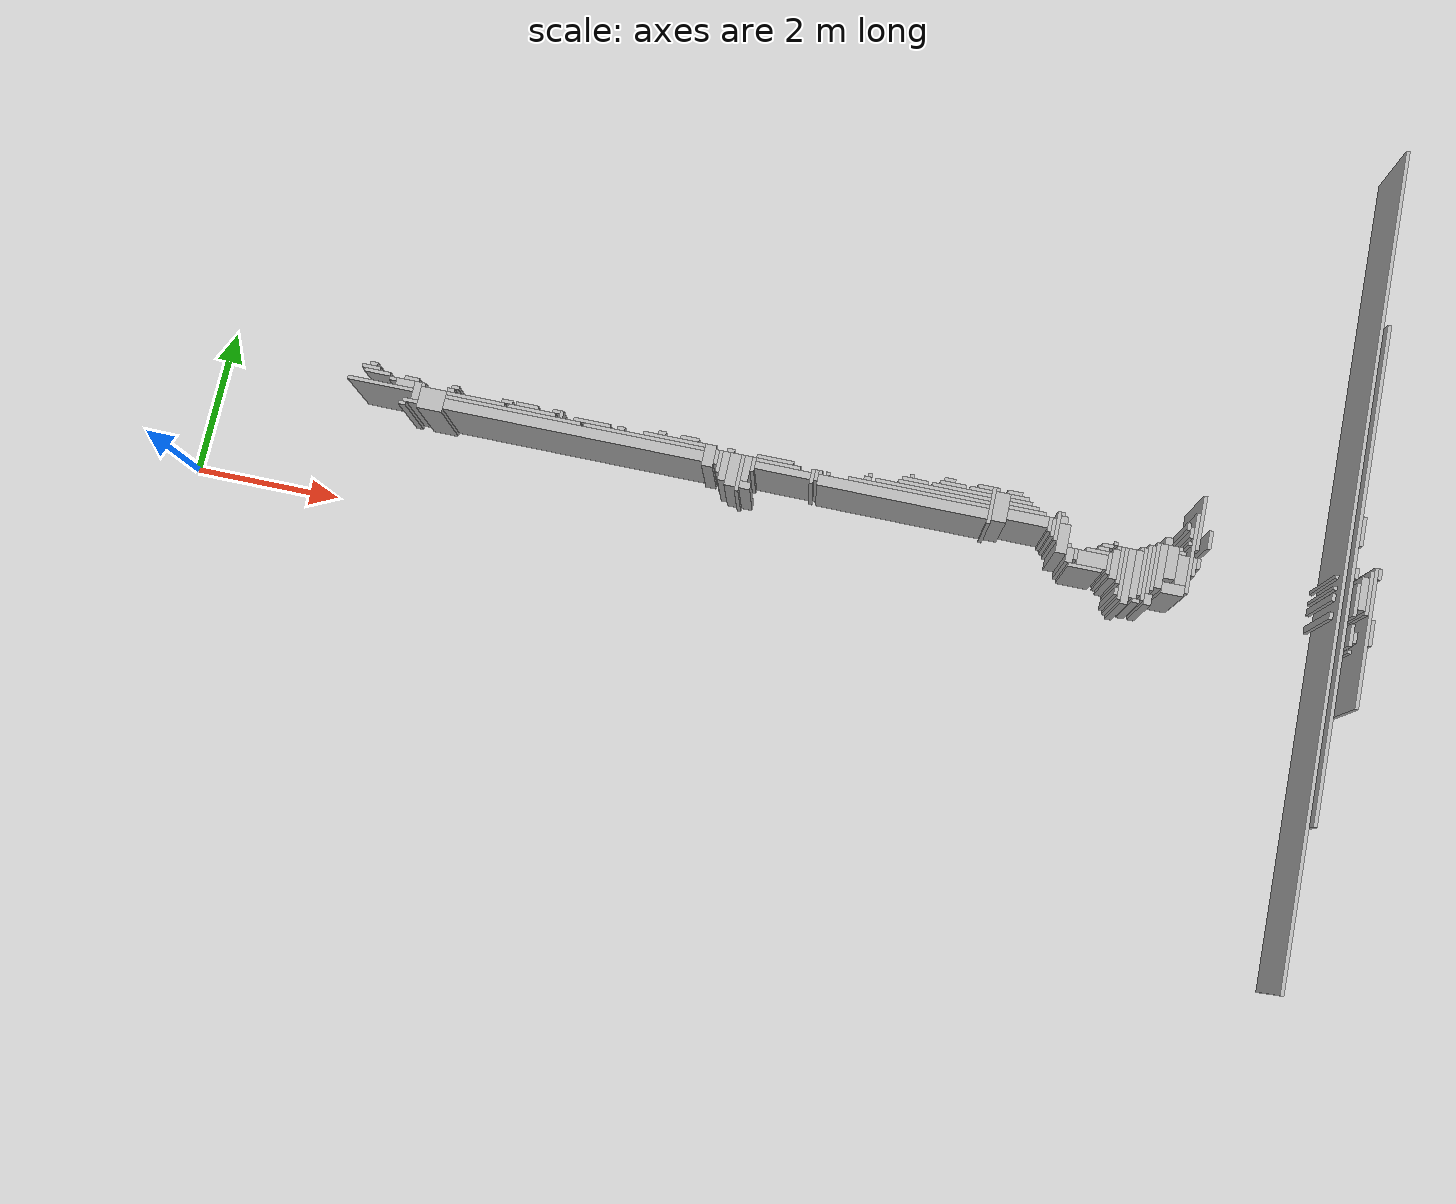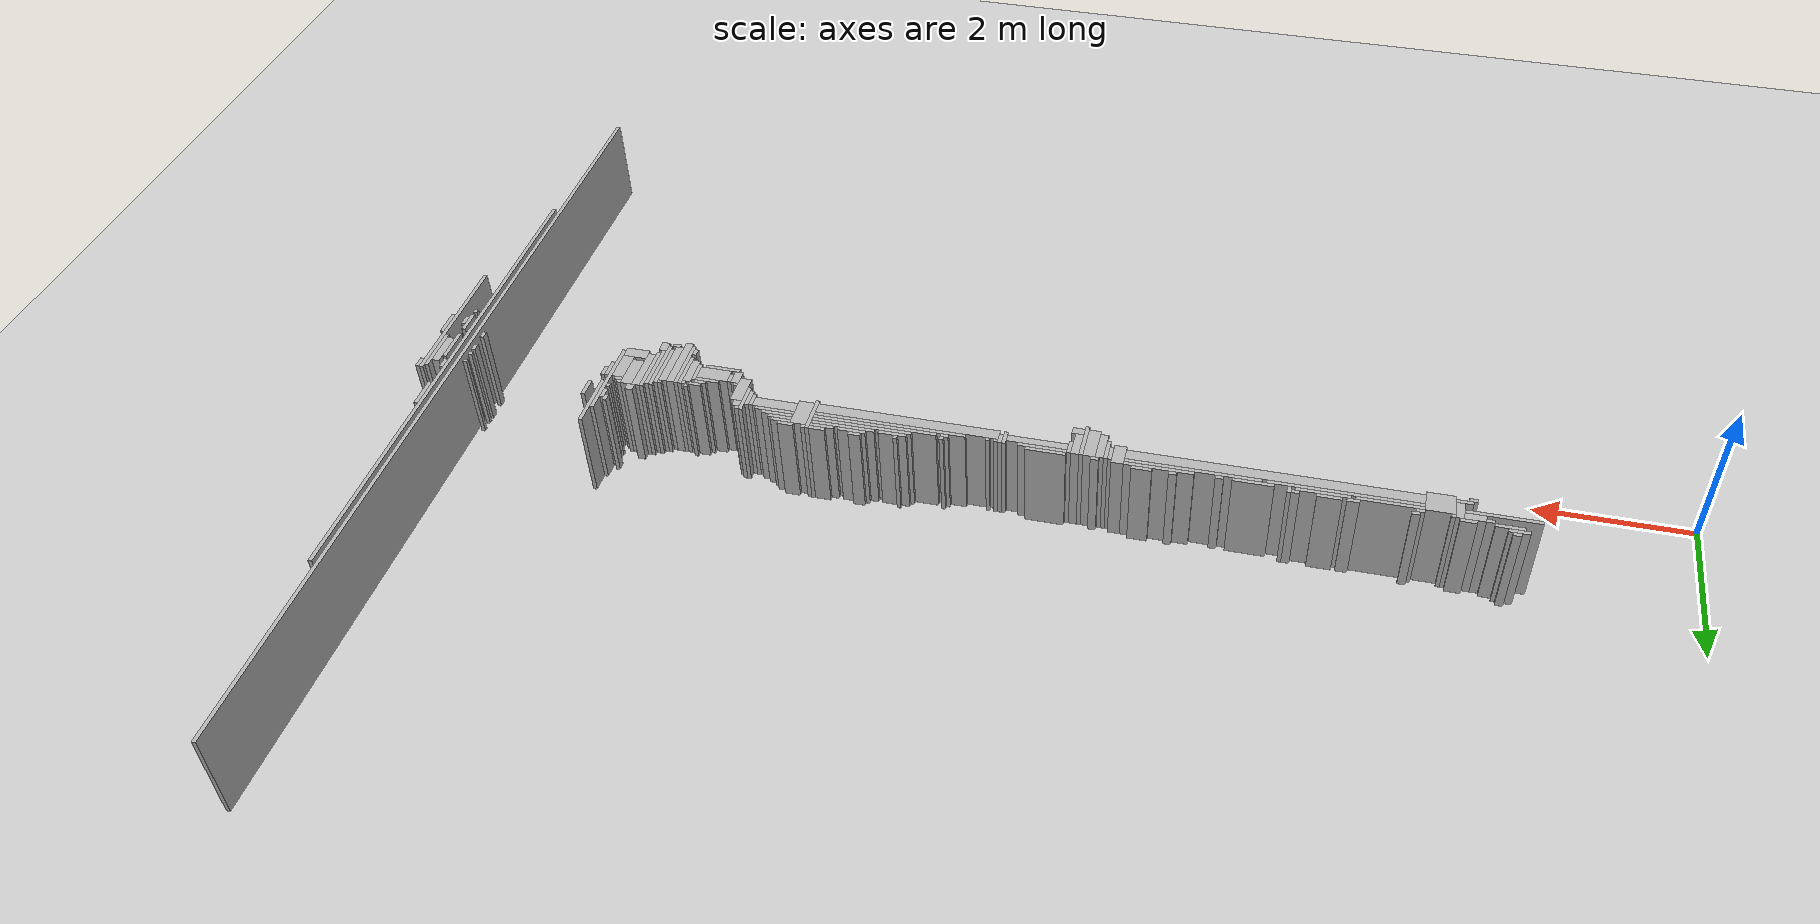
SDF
<sdf version="1.6">
 <world name="d10_floor">
  <include><uri>model://sun</uri></include>
  <include><uri>model://ground_plane</uri></include>
  <model name="d10_walls">
   <static>true</static>
   <link name="w1187">
    <pose>15.550 1.780 0.60 0 0 0</pose>
    <collision name="c"><geometry><box><size>0.050 11.550 1.20</size></box></geometry></collision>
    <visual name="v">
     <geometry><box><size>0.050 11.550 1.20</size></box></geometry>
     <material><ambient>0.6 0.6 0.6 1</ambient><diffuse>0.7 0.7 0.7 1</diffuse></material>
    </visual>
   </link>
   <link name="w1292">
    <pose>15.650 1.580 0.60 0 0 0</pose>
    <collision name="c"><geometry><box><size>0.050 6.850 1.20</size></box></geometry></collision>
    <visual name="v">
     <geometry><box><size>0.050 6.850 1.20</size></box></geometry>
     <material><ambient>0.6 0.6 0.6 1</ambient><diffuse>0.7 0.7 0.7 1</diffuse></material>
    </visual>
   </link>
   <link name="w1524">
    <pose>15.950 0.705 0.60 0 0 0</pose>
    <collision name="c"><geometry><box><size>0.050 1.900 1.20</size></box></geometry></collision>
    <visual name="v">
     <geometry><box><size>0.050 1.900 1.20</size></box></geometry>
     <material><ambient>0.6 0.6 0.6 1</ambient><diffuse>0.7 0.7 0.7 1</diffuse></material>
    </visual>
   </link>
   <link name="w1546">
    <pose>15.750 0.480 0.60 0 0 0</pose>
    <collision name="c"><geometry><box><size>0.050 0.050 1.20</size></box></geometry></collision>
    <visual name="v">
     <geometry><box><size>0.050 0.050 1.20</size></box></geometry>
     <material><ambient>0.6 0.6 0.6 1</ambient><diffuse>0.7 0.7 0.7 1</diffuse></material>
    </visual>
   </link>
   <link name="w1550">
    <pose>12.775 0.880 0.60 0 0 0</pose>
    <collision name="c"><geometry><box><size>0.100 0.750 1.20</size></box></geometry></collision>
    <visual name="v">
     <geometry><box><size>0.100 0.750 1.20</size></box></geometry>
     <material><ambient>0.6 0.6 0.6 1</ambient><diffuse>0.7 0.7 0.7 1</diffuse></material>
    </visual>
   </link>
   <link name="w1555">
    <pose>12.700 0.905 0.60 0 0 0</pose>
    <collision name="c"><geometry><box><size>0.050 0.700 1.20</size></box></geometry></collision>
    <visual name="v">
     <geometry><box><size>0.050 0.700 1.20</size></box></geometry>
     <material><ambient>0.6 0.6 0.6 1</ambient><diffuse>0.7 0.7 0.7 1</diffuse></material>
    </visual>
   </link>
   <link name="w1556">
    <pose>12.925 0.580 0.60 0 0 0</pose>
    <collision name="c"><geometry><box><size>0.100 0.050 1.20</size></box></geometry></collision>
    <visual name="v">
     <geometry><box><size>0.100 0.050 1.20</size></box></geometry>
     <material><ambient>0.6 0.6 0.6 1</ambient><diffuse>0.7 0.7 0.7 1</diffuse></material>
    </visual>
   </link>
   <link name="w1557">
    <pose>13.075 0.630 0.60 0 0 0</pose>
    <collision name="c"><geometry><box><size>0.100 0.150 1.20</size></box></geometry></collision>
    <visual name="v">
     <geometry><box><size>0.100 0.150 1.20</size></box></geometry>
     <material><ambient>0.6 0.6 0.6 1</ambient><diffuse>0.7 0.7 0.7 1</diffuse></material>
    </visual>
   </link>
   <link name="w1558">
    <pose>15.750 0.705 0.60 0 0 0</pose>
    <collision name="c"><geometry><box><size>0.050 0.300 1.20</size></box></geometry></collision>
    <visual name="v">
     <geometry><box><size>0.050 0.300 1.20</size></box></geometry>
     <material><ambient>0.6 0.6 0.6 1</ambient><diffuse>0.7 0.7 0.7 1</diffuse></material>
    </visual>
   </link>
   <link name="w1563">
    <pose>12.650 0.655 0.60 0 0 0</pose>
    <collision name="c"><geometry><box><size>0.050 0.100 1.20</size></box></geometry></collision>
    <visual name="v">
     <geometry><box><size>0.050 0.100 1.20</size></box></geometry>
     <material><ambient>0.6 0.6 0.6 1</ambient><diffuse>0.7 0.7 0.7 1</diffuse></material>
    </visual>
   </link>
   <link name="w1564">
    <pose>12.875 0.930 0.60 0 0 0</pose>
    <collision name="c"><geometry><box><size>0.100 0.650 1.20</size></box></geometry></collision>
    <visual name="v">
     <geometry><box><size>0.100 0.650 1.20</size></box></geometry>
     <material><ambient>0.6 0.6 0.6 1</ambient><diffuse>0.7 0.7 0.7 1</diffuse></material>
    </visual>
   </link>
   <link name="w1565">
    <pose>13.000 0.980 0.60 0 0 0</pose>
    <collision name="c"><geometry><box><size>0.050 0.750 1.20</size></box></geometry></collision>
    <visual name="v">
     <geometry><box><size>0.050 0.750 1.20</size></box></geometry>
     <material><ambient>0.6 0.6 0.6 1</ambient><diffuse>0.7 0.7 0.7 1</diffuse></material>
    </visual>
   </link>
   <link name="w1566">
    <pose>15.800 0.680 0.60 0 0 0</pose>
    <collision name="c"><geometry><box><size>0.050 0.150 1.20</size></box></geometry></collision>
    <visual name="v">
     <geometry><box><size>0.050 0.150 1.20</size></box></geometry>
     <material><ambient>0.6 0.6 0.6 1</ambient><diffuse>0.7 0.7 0.7 1</diffuse></material>
    </visual>
   </link>
   <link name="w1567">
    <pose>16.000 0.780 0.60 0 0 0</pose>
    <collision name="c"><geometry><box><size>0.050 0.350 1.20</size></box></geometry></collision>
    <visual name="v">
     <geometry><box><size>0.050 0.350 1.20</size></box></geometry>
     <material><ambient>0.6 0.6 0.6 1</ambient><diffuse>0.7 0.7 0.7 1</diffuse></material>
    </visual>
   </link>
   <link name="w1575">
    <pose>12.950 0.980 0.60 0 0 0</pose>
    <collision name="c"><geometry><box><size>0.050 0.650 1.20</size></box></geometry></collision>
    <visual name="v">
     <geometry><box><size>0.050 0.650 1.20</size></box></geometry>
     <material><ambient>0.6 0.6 0.6 1</ambient><diffuse>0.7 0.7 0.7 1</diffuse></material>
    </visual>
   </link>
   <link name="w1583">
    <pose>13.050 1.030 0.60 0 0 0</pose>
    <collision name="c"><geometry><box><size>0.050 0.650 1.20</size></box></geometry></collision>
    <visual name="v">
     <geometry><box><size>0.050 0.650 1.20</size></box></geometry>
     <material><ambient>0.6 0.6 0.6 1</ambient><diffuse>0.7 0.7 0.7 1</diffuse></material>
    </visual>
   </link>
   <link name="w1588">
    <pose>12.650 1.005 0.60 0 0 0</pose>
    <collision name="c"><geometry><box><size>0.050 0.500 1.20</size></box></geometry></collision>
    <visual name="v">
     <geometry><box><size>0.050 0.500 1.20</size></box></geometry>
     <material><ambient>0.6 0.6 0.6 1</ambient><diffuse>0.7 0.7 0.7 1</diffuse></material>
    </visual>
   </link>
   <link name="w1589">
    <pose>13.100 1.080 0.60 0 0 0</pose>
    <collision name="c"><geometry><box><size>0.050 0.650 1.20</size></box></geometry></collision>
    <visual name="v">
     <geometry><box><size>0.050 0.650 1.20</size></box></geometry>
     <material><ambient>0.6 0.6 0.6 1</ambient><diffuse>0.7 0.7 0.7 1</diffuse></material>
    </visual>
   </link>
   <link name="w1590">
    <pose>13.375 0.830 0.60 0 0 0</pose>
    <collision name="c"><geometry><box><size>0.300 0.150 1.20</size></box></geometry></collision>
    <visual name="v">
     <geometry><box><size>0.300 0.150 1.20</size></box></geometry>
     <material><ambient>0.6 0.6 0.6 1</ambient><diffuse>0.7 0.7 0.7 1</diffuse></material>
    </visual>
   </link>
   <link name="w1596">
    <pose>12.575 1.005 0.60 0 0 0</pose>
    <collision name="c"><geometry><box><size>0.100 0.400 1.20</size></box></geometry></collision>
    <visual name="v">
     <geometry><box><size>0.100 0.400 1.20</size></box></geometry>
     <material><ambient>0.6 0.6 0.6 1</ambient><diffuse>0.7 0.7 0.7 1</diffuse></material>
    </visual>
   </link>
   <link name="w1597">
    <pose>13.175 1.105 0.60 0 0 0</pose>
    <collision name="c"><geometry><box><size>0.100 0.600 1.20</size></box></geometry></collision>
    <visual name="v">
     <geometry><box><size>0.100 0.600 1.20</size></box></geometry>
     <material><ambient>0.6 0.6 0.6 1</ambient><diffuse>0.7 0.7 0.7 1</diffuse></material>
    </visual>
   </link>
   <link name="w1598">
    <pose>13.550 1.355 0.60 0 0 0</pose>
    <collision name="c"><geometry><box><size>0.050 1.100 1.20</size></box></geometry></collision>
    <visual name="v">
     <geometry><box><size>0.050 1.100 1.20</size></box></geometry>
     <material><ambient>0.6 0.6 0.6 1</ambient><diffuse>0.7 0.7 0.7 1</diffuse></material>
    </visual>
   </link>
   <link name="w1606">
    <pose>12.200 0.880 0.60 0 0 0</pose>
    <collision name="c"><geometry><box><size>0.450 0.050 1.20</size></box></geometry></collision>
    <visual name="v">
     <geometry><box><size>0.450 0.050 1.20</size></box></geometry>
     <material><ambient>0.6 0.6 0.6 1</ambient><diffuse>0.7 0.7 0.7 1</diffuse></material>
    </visual>
   </link>
   <link name="w1607">
    <pose>12.500 1.005 0.60 0 0 0</pose>
    <collision name="c"><geometry><box><size>0.050 0.300 1.20</size></box></geometry></collision>
    <visual name="v">
     <geometry><box><size>0.050 0.300 1.20</size></box></geometry>
     <material><ambient>0.6 0.6 0.6 1</ambient><diffuse>0.7 0.7 0.7 1</diffuse></material>
    </visual>
   </link>
   <link name="w1608">
    <pose>15.450 0.905 0.60 0 0 0</pose>
    <collision name="c"><geometry><box><size>0.050 0.100 1.20</size></box></geometry></collision>
    <visual name="v">
     <geometry><box><size>0.050 0.100 1.20</size></box></geometry>
     <material><ambient>0.6 0.6 0.6 1</ambient><diffuse>0.7 0.7 0.7 1</diffuse></material>
    </visual>
   </link>
   <link name="w1618">
    <pose>11.975 1.005 0.60 0 0 0</pose>
    <collision name="c"><geometry><box><size>0.100 0.200 1.20</size></box></geometry></collision>
    <visual name="v">
     <geometry><box><size>0.100 0.200 1.20</size></box></geometry>
     <material><ambient>0.6 0.6 0.6 1</ambient><diffuse>0.7 0.7 0.7 1</diffuse></material>
    </visual>
   </link>
   <link name="w1619">
    <pose>12.275 1.005 0.60 0 0 0</pose>
    <collision name="c"><geometry><box><size>0.400 0.200 1.20</size></box></geometry></collision>
    <visual name="v">
     <geometry><box><size>0.400 0.200 1.20</size></box></geometry>
     <material><ambient>0.6 0.6 0.6 1</ambient><diffuse>0.7 0.7 0.7 1</diffuse></material>
    </visual>
   </link>
   <link name="w1620">
    <pose>13.450 1.105 0.60 0 0 0</pose>
    <collision name="c"><geometry><box><size>0.150 0.400 1.20</size></box></geometry></collision>
    <visual name="v">
     <geometry><box><size>0.150 0.400 1.20</size></box></geometry>
     <material><ambient>0.6 0.6 0.6 1</ambient><diffuse>0.7 0.7 0.7 1</diffuse></material>
    </visual>
   </link>
   <link name="w1630">
    <pose>7.500 1.205 0.60 0 0 0</pose>
    <collision name="c"><geometry><box><size>0.050 0.500 1.20</size></box></geometry></collision>
    <visual name="v">
     <geometry><box><size>0.050 0.500 1.20</size></box></geometry>
     <material><ambient>0.6 0.6 0.6 1</ambient><diffuse>0.7 0.7 0.7 1</diffuse></material>
    </visual>
   </link>
   <link name="w1631">
    <pose>12.050 1.030 0.60 0 0 0</pose>
    <collision name="c"><geometry><box><size>0.050 0.150 1.20</size></box></geometry></collision>
    <visual name="v">
     <geometry><box><size>0.050 0.150 1.20</size></box></geometry>
     <material><ambient>0.6 0.6 0.6 1</ambient><diffuse>0.7 0.7 0.7 1</diffuse></material>
    </visual>
   </link>
   <link name="w1632">
    <pose>13.300 1.180 0.60 0 0 0</pose>
    <collision name="c"><geometry><box><size>0.150 0.450 1.20</size></box></geometry></collision>
    <visual name="v">
     <geometry><box><size>0.150 0.450 1.20</size></box></geometry>
     <material><ambient>0.6 0.6 0.6 1</ambient><diffuse>0.7 0.7 0.7 1</diffuse></material>
    </visual>
   </link>
   <link name="w1633">
    <pose>15.750 1.180 0.60 0 0 0</pose>
    <collision name="c"><geometry><box><size>0.050 0.450 1.20</size></box></geometry></collision>
    <visual name="v">
     <geometry><box><size>0.050 0.450 1.20</size></box></geometry>
     <material><ambient>0.6 0.6 0.6 1</ambient><diffuse>0.7 0.7 0.7 1</diffuse></material>
    </visual>
   </link>
   <link name="w1640">
    <pose>7.400 1.230 0.60 0 0 0</pose>
    <collision name="c"><geometry><box><size>0.150 0.450 1.20</size></box></geometry></collision>
    <visual name="v">
     <geometry><box><size>0.150 0.450 1.20</size></box></geometry>
     <material><ambient>0.6 0.6 0.6 1</ambient><diffuse>0.7 0.7 0.7 1</diffuse></material>
    </visual>
   </link>
   <link name="w1641">
    <pose>7.600 1.055 0.60 0 0 0</pose>
    <collision name="c"><geometry><box><size>0.150 0.100 1.20</size></box></geometry></collision>
    <visual name="v">
     <geometry><box><size>0.150 0.100 1.20</size></box></geometry>
     <material><ambient>0.6 0.6 0.6 1</ambient><diffuse>0.7 0.7 0.7 1</diffuse></material>
    </visual>
   </link>
   <link name="w1642">
    <pose>11.850 1.205 0.60 0 0 0</pose>
    <collision name="c"><geometry><box><size>0.150 0.400 1.20</size></box></geometry></collision>
    <visual name="v">
     <geometry><box><size>0.150 0.400 1.20</size></box></geometry>
     <material><ambient>0.6 0.6 0.6 1</ambient><diffuse>0.7 0.7 0.7 1</diffuse></material>
    </visual>
   </link>
   <link name="w1643">
    <pose>15.900 1.305 0.60 0 0 0</pose>
    <collision name="c"><geometry><box><size>0.050 0.600 1.20</size></box></geometry></collision>
    <visual name="v">
     <geometry><box><size>0.050 0.600 1.20</size></box></geometry>
     <material><ambient>0.6 0.6 0.6 1</ambient><diffuse>0.7 0.7 0.7 1</diffuse></material>
    </visual>
   </link>
   <link name="w1652">
    <pose>7.275 1.255 0.60 0 0 0</pose>
    <collision name="c"><geometry><box><size>0.100 0.400 1.20</size></box></geometry></collision>
    <visual name="v">
     <geometry><box><size>0.100 0.400 1.20</size></box></geometry>
     <material><ambient>0.6 0.6 0.6 1</ambient><diffuse>0.7 0.7 0.7 1</diffuse></material>
    </visual>
   </link>
   <link name="w1653">
    <pose>13.600 1.180 0.60 0 0 0</pose>
    <collision name="c"><geometry><box><size>0.050 0.250 1.20</size></box></geometry></collision>
    <visual name="v">
     <geometry><box><size>0.050 0.250 1.20</size></box></geometry>
     <material><ambient>0.6 0.6 0.6 1</ambient><diffuse>0.7 0.7 0.7 1</diffuse></material>
    </visual>
   </link>
   <link name="w1654">
    <pose>15.825 1.280 0.60 0 0 0</pose>
    <collision name="c"><geometry><box><size>0.100 0.450 1.20</size></box></geometry></collision>
    <visual name="v">
     <geometry><box><size>0.100 0.450 1.20</size></box></geometry>
     <material><ambient>0.6 0.6 0.6 1</ambient><diffuse>0.7 0.7 0.7 1</diffuse></material>
    </visual>
   </link>
   <link name="w1660">
    <pose>7.575 1.280 0.60 0 0 0</pose>
    <collision name="c"><geometry><box><size>0.100 0.350 1.20</size></box></geometry></collision>
    <visual name="v">
     <geometry><box><size>0.100 0.350 1.20</size></box></geometry>
     <material><ambient>0.6 0.6 0.6 1</ambient><diffuse>0.7 0.7 0.7 1</diffuse></material>
    </visual>
   </link>
   <link name="w1661">
    <pose>11.950 1.130 0.60 0 0 0</pose>
    <collision name="c"><geometry><box><size>0.050 0.050 1.20</size></box></geometry></collision>
    <visual name="v">
     <geometry><box><size>0.050 0.050 1.20</size></box></geometry>
     <material><ambient>0.6 0.6 0.6 1</ambient><diffuse>0.7 0.7 0.7 1</diffuse></material>
    </visual>
   </link>
   <link name="w1662">
    <pose>12.325 1.130 0.60 0 0 0</pose>
    <collision name="c"><geometry><box><size>0.300 0.050 1.20</size></box></geometry></collision>
    <visual name="v">
     <geometry><box><size>0.300 0.050 1.20</size></box></geometry>
     <material><ambient>0.6 0.6 0.6 1</ambient><diffuse>0.7 0.7 0.7 1</diffuse></material>
    </visual>
   </link>
   <link name="w1663">
    <pose>15.450 1.155 0.60 0 0 0</pose>
    <collision name="c"><geometry><box><size>0.050 0.100 1.20</size></box></geometry></collision>
    <visual name="v">
     <geometry><box><size>0.050 0.100 1.20</size></box></geometry>
     <material><ambient>0.6 0.6 0.6 1</ambient><diffuse>0.7 0.7 0.7 1</diffuse></material>
    </visual>
   </link>
   <link name="w1671">
    <pose>7.200 1.305 0.60 0 0 0</pose>
    <collision name="c"><geometry><box><size>0.050 0.300 1.20</size></box></geometry></collision>
    <visual name="v">
     <geometry><box><size>0.050 0.300 1.20</size></box></geometry>
     <material><ambient>0.6 0.6 0.6 1</ambient><diffuse>0.7 0.7 0.7 1</diffuse></material>
    </visual>
   </link>
   <link name="w1672">
    <pose>11.750 1.355 0.60 0 0 0</pose>
    <collision name="c"><geometry><box><size>0.050 0.400 1.20</size></box></geometry></collision>
    <visual name="v">
     <geometry><box><size>0.050 0.400 1.20</size></box></geometry>
     <material><ambient>0.6 0.6 0.6 1</ambient><diffuse>0.7 0.7 0.7 1</diffuse></material>
    </visual>
   </link>
   <link name="w1673">
    <pose>12.400 1.180 0.60 0 0 0</pose>
    <collision name="c"><geometry><box><size>0.150 0.050 1.20</size></box></geometry></collision>
    <visual name="v">
     <geometry><box><size>0.150 0.050 1.20</size></box></geometry>
     <material><ambient>0.6 0.6 0.6 1</ambient><diffuse>0.7 0.7 0.7 1</diffuse></material>
    </visual>
   </link>
   <link name="w1674">
    <pose>13.650 1.230 0.60 0 0 0</pose>
    <collision name="c"><geometry><box><size>0.050 0.150 1.20</size></box></geometry></collision>
    <visual name="v">
     <geometry><box><size>0.050 0.150 1.20</size></box></geometry>
     <material><ambient>0.6 0.6 0.6 1</ambient><diffuse>0.7 0.7 0.7 1</diffuse></material>
    </visual>
   </link>
   <link name="w1684">
    <pose>2.875 1.230 0.60 0 0 0</pose>
    <collision name="c"><geometry><box><size>0.100 0.050 1.20</size></box></geometry></collision>
    <visual name="v">
     <geometry><box><size>0.100 0.050 1.20</size></box></geometry>
     <material><ambient>0.6 0.6 0.6 1</ambient><diffuse>0.7 0.7 0.7 1</diffuse></material>
    </visual>
   </link>
   <link name="w1685">
    <pose>3.250 1.355 0.60 0 0 0</pose>
    <collision name="c"><geometry><box><size>0.350 0.300 1.20</size></box></geometry></collision>
    <visual name="v">
     <geometry><box><size>0.350 0.300 1.20</size></box></geometry>
     <material><ambient>0.6 0.6 0.6 1</ambient><diffuse>0.7 0.7 0.7 1</diffuse></material>
    </visual>
   </link>
   <link name="w1686">
    <pose>7.050 1.355 0.60 0 0 0</pose>
    <collision name="c"><geometry><box><size>0.150 0.300 1.20</size></box></geometry></collision>
    <visual name="v">
     <geometry><box><size>0.150 0.300 1.20</size></box></geometry>
     <material><ambient>0.6 0.6 0.6 1</ambient><diffuse>0.7 0.7 0.7 1</diffuse></material>
    </visual>
   </link>
   <link name="w1687">
    <pose>10.850 1.455 0.60 0 0 0</pose>
    <collision name="c"><geometry><box><size>0.050 0.500 1.20</size></box></geometry></collision>
    <visual name="v">
     <geometry><box><size>0.050 0.500 1.20</size></box></geometry>
     <material><ambient>0.6 0.6 0.6 1</ambient><diffuse>0.7 0.7 0.7 1</diffuse></material>
    </visual>
   </link>
   <link name="w1688">
    <pose>11.700 1.330 0.60 0 0 0</pose>
    <collision name="c"><geometry><box><size>0.050 0.250 1.20</size></box></geometry></collision>
    <visual name="v">
     <geometry><box><size>0.050 0.250 1.20</size></box></geometry>
     <material><ambient>0.6 0.6 0.6 1</ambient><diffuse>0.7 0.7 0.7 1</diffuse></material>
    </visual>
   </link>
   <link name="w1689">
    <pose>12.450 1.230 0.60 0 0 0</pose>
    <collision name="c"><geometry><box><size>0.150 0.050 1.20</size></box></geometry></collision>
    <visual name="v">
     <geometry><box><size>0.150 0.050 1.20</size></box></geometry>
     <material><ambient>0.6 0.6 0.6 1</ambient><diffuse>0.7 0.7 0.7 1</diffuse></material>
    </visual>
   </link>
   <link name="w1690">
    <pose>12.600 1.230 0.60 0 0 0</pose>
    <collision name="c"><geometry><box><size>0.050 0.050 1.20</size></box></geometry></collision>
    <visual name="v">
     <geometry><box><size>0.050 0.050 1.20</size></box></geometry>
     <material><ambient>0.6 0.6 0.6 1</ambient><diffuse>0.7 0.7 0.7 1</diffuse></material>
    </visual>
   </link>
   <link name="w1694">
    <pose>2.975 1.280 0.60 0 0 0</pose>
    <collision name="c"><geometry><box><size>0.200 0.050 1.20</size></box></geometry></collision>
    <visual name="v">
     <geometry><box><size>0.200 0.050 1.20</size></box></geometry>
     <material><ambient>0.6 0.6 0.6 1</ambient><diffuse>0.7 0.7 0.7 1</diffuse></material>
    </visual>
   </link>
   <link name="w1695">
    <pose>5.200 1.330 0.60 0 0 0</pose>
    <collision name="c"><geometry><box><size>3.550 0.150 1.20</size></box></geometry></collision>
    <visual name="v">
     <geometry><box><size>3.550 0.150 1.20</size></box></geometry>
     <material><ambient>0.6 0.6 0.6 1</ambient><diffuse>0.7 0.7 0.7 1</diffuse></material>
    </visual>
   </link>
   <link name="w1696">
    <pose>7.150 1.355 0.60 0 0 0</pose>
    <collision name="c"><geometry><box><size>0.050 0.200 1.20</size></box></geometry></collision>
    <visual name="v">
     <geometry><box><size>0.050 0.200 1.20</size></box></geometry>
     <material><ambient>0.6 0.6 0.6 1</ambient><diffuse>0.7 0.7 0.7 1</diffuse></material>
    </visual>
   </link>
   <link name="w1697">
    <pose>7.650 1.355 0.60 0 0 0</pose>
    <collision name="c"><geometry><box><size>0.050 0.200 1.20</size></box></geometry></collision>
    <visual name="v">
     <geometry><box><size>0.050 0.200 1.20</size></box></geometry>
     <material><ambient>0.6 0.6 0.6 1</ambient><diffuse>0.7 0.7 0.7 1</diffuse></material>
    </visual>
   </link>
   <link name="w1698">
    <pose>8.450 1.355 0.60 0 0 0</pose>
    <collision name="c"><geometry><box><size>0.050 0.200 1.20</size></box></geometry></collision>
    <visual name="v">
     <geometry><box><size>0.050 0.200 1.20</size></box></geometry>
     <material><ambient>0.6 0.6 0.6 1</ambient><diffuse>0.7 0.7 0.7 1</diffuse></material>
    </visual>
   </link>
   <link name="w1699">
    <pose>9.675 1.330 0.60 0 0 0</pose>
    <collision name="c"><geometry><box><size>2.300 0.150 1.20</size></box></geometry></collision>
    <visual name="v">
     <geometry><box><size>2.300 0.150 1.20</size></box></geometry>
     <material><ambient>0.6 0.6 0.6 1</ambient><diffuse>0.7 0.7 0.7 1</diffuse></material>
    </visual>
   </link>
   <link name="w1700">
    <pose>10.975 1.455 0.60 0 0 0</pose>
    <collision name="c"><geometry><box><size>0.200 0.400 1.20</size></box></geometry></collision>
    <visual name="v">
     <geometry><box><size>0.200 0.400 1.20</size></box></geometry>
     <material><ambient>0.6 0.6 0.6 1</ambient><diffuse>0.7 0.7 0.7 1</diffuse></material>
    </visual>
   </link>
   <link name="w1701">
    <pose>11.650 1.355 0.60 0 0 0</pose>
    <collision name="c"><geometry><box><size>0.050 0.200 1.20</size></box></geometry></collision>
    <visual name="v">
     <geometry><box><size>0.050 0.200 1.20</size></box></geometry>
     <material><ambient>0.6 0.6 0.6 1</ambient><diffuse>0.7 0.7 0.7 1</diffuse></material>
    </visual>
   </link>
   <link name="w1702">
    <pose>12.550 1.280 0.60 0 0 0</pose>
    <collision name="c"><geometry><box><size>0.050 0.050 1.20</size></box></geometry></collision>
    <visual name="v">
     <geometry><box><size>0.050 0.050 1.20</size></box></geometry>
     <material><ambient>0.6 0.6 0.6 1</ambient><diffuse>0.7 0.7 0.7 1</diffuse></material>
    </visual>
   </link>
   <link name="w1703">
    <pose>12.900 1.280 0.60 0 0 0</pose>
    <collision name="c"><geometry><box><size>0.050 0.050 1.20</size></box></geometry></collision>
    <visual name="v">
     <geometry><box><size>0.050 0.050 1.20</size></box></geometry>
     <material><ambient>0.6 0.6 0.6 1</ambient><diffuse>0.7 0.7 0.7 1</diffuse></material>
    </visual>
   </link>
   <link name="w1704">
    <pose>15.450 1.280 0.60 0 0 0</pose>
    <collision name="c"><geometry><box><size>0.050 0.050 1.20</size></box></geometry></collision>
    <visual name="v">
     <geometry><box><size>0.050 0.050 1.20</size></box></geometry>
     <material><ambient>0.6 0.6 0.6 1</ambient><diffuse>0.7 0.7 0.7 1</diffuse></material>
    </visual>
   </link>
   <link name="w1712">
    <pose>3.025 1.430 0.60 0 0 0</pose>
    <collision name="c"><geometry><box><size>0.100 0.250 1.20</size></box></geometry></collision>
    <visual name="v">
     <geometry><box><size>0.100 0.250 1.20</size></box></geometry>
     <material><ambient>0.6 0.6 0.6 1</ambient><diffuse>0.7 0.7 0.7 1</diffuse></material>
    </visual>
   </link>
   <link name="w1713">
    <pose>8.050 1.355 0.60 0 0 0</pose>
    <collision name="c"><geometry><box><size>0.750 0.100 1.20</size></box></geometry></collision>
    <visual name="v">
     <geometry><box><size>0.750 0.100 1.20</size></box></geometry>
     <material><ambient>0.6 0.6 0.6 1</ambient><diffuse>0.7 0.7 0.7 1</diffuse></material>
    </visual>
   </link>
   <link name="w1714">
    <pose>8.500 1.380 0.60 0 0 0</pose>
    <collision name="c"><geometry><box><size>0.050 0.150 1.20</size></box></geometry></collision>
    <visual name="v">
     <geometry><box><size>0.050 0.150 1.20</size></box></geometry>
     <material><ambient>0.6 0.6 0.6 1</ambient><diffuse>0.7 0.7 0.7 1</diffuse></material>
    </visual>
   </link>
   <link name="w1715">
    <pose>11.350 1.380 0.60 0 0 0</pose>
    <collision name="c"><geometry><box><size>0.550 0.150 1.20</size></box></geometry></collision>
    <visual name="v">
     <geometry><box><size>0.550 0.150 1.20</size></box></geometry>
     <material><ambient>0.6 0.6 0.6 1</ambient><diffuse>0.7 0.7 0.7 1</diffuse></material>
    </visual>
   </link>
   <link name="w1716">
    <pose>13.425 1.330 0.60 0 0 0</pose>
    <collision name="c"><geometry><box><size>0.100 0.050 1.20</size></box></geometry></collision>
    <visual name="v">
     <geometry><box><size>0.100 0.050 1.20</size></box></geometry>
     <material><ambient>0.6 0.6 0.6 1</ambient><diffuse>0.7 0.7 0.7 1</diffuse></material>
    </visual>
   </link>
   <link name="w1727">
    <pose>13.400 1.380 0.60 0 0 0</pose>
    <collision name="c"><geometry><box><size>0.050 0.050 1.20</size></box></geometry></collision>
    <visual name="v">
     <geometry><box><size>0.050 0.050 1.20</size></box></geometry>
     <material><ambient>0.6 0.6 0.6 1</ambient><diffuse>0.7 0.7 0.7 1</diffuse></material>
    </visual>
   </link>
   <link name="w1734">
    <pose>2.525 1.430 0.60 0 0 0</pose>
    <collision name="c"><geometry><box><size>0.900 0.050 1.20</size></box></geometry></collision>
    <visual name="v">
     <geometry><box><size>0.900 0.050 1.20</size></box></geometry>
     <material><ambient>0.6 0.6 0.6 1</ambient><diffuse>0.7 0.7 0.7 1</diffuse></material>
    </visual>
   </link>
   <link name="w1735">
    <pose>4.350 1.430 0.60 0 0 0</pose>
    <collision name="c"><geometry><box><size>1.850 0.050 1.20</size></box></geometry></collision>
    <visual name="v">
     <geometry><box><size>1.850 0.050 1.20</size></box></geometry>
     <material><ambient>0.6 0.6 0.6 1</ambient><diffuse>0.7 0.7 0.7 1</diffuse></material>
    </visual>
   </link>
   <link name="w1736">
    <pose>6.150 1.430 0.60 0 0 0</pose>
    <collision name="c"><geometry><box><size>1.650 0.050 1.20</size></box></geometry></collision>
    <visual name="v">
     <geometry><box><size>1.650 0.050 1.20</size></box></geometry>
     <material><ambient>0.6 0.6 0.6 1</ambient><diffuse>0.7 0.7 0.7 1</diffuse></material>
    </visual>
   </link>
   <link name="w1737">
    <pose>7.975 1.430 0.60 0 0 0</pose>
    <collision name="c"><geometry><box><size>0.600 0.050 1.20</size></box></geometry></collision>
    <visual name="v">
     <geometry><box><size>0.600 0.050 1.20</size></box></geometry>
     <material><ambient>0.6 0.6 0.6 1</ambient><diffuse>0.7 0.7 0.7 1</diffuse></material>
    </visual>
   </link>
   <link name="w1738">
    <pose>8.550 1.430 0.60 0 0 0</pose>
    <collision name="c"><geometry><box><size>0.050 0.050 1.20</size></box></geometry></collision>
    <visual name="v">
     <geometry><box><size>0.050 0.050 1.20</size></box></geometry>
     <material><ambient>0.6 0.6 0.6 1</ambient><diffuse>0.7 0.7 0.7 1</diffuse></material>
    </visual>
   </link>
   <link name="w1739">
    <pose>8.650 1.430 0.60 0 0 0</pose>
    <collision name="c"><geometry><box><size>0.050 0.050 1.20</size></box></geometry></collision>
    <visual name="v">
     <geometry><box><size>0.050 0.050 1.20</size></box></geometry>
     <material><ambient>0.6 0.6 0.6 1</ambient><diffuse>0.7 0.7 0.7 1</diffuse></material>
    </visual>
   </link>
   <link name="w1740">
    <pose>9.875 1.430 0.60 0 0 0</pose>
    <collision name="c"><geometry><box><size>1.900 0.050 1.20</size></box></geometry></collision>
    <visual name="v">
     <geometry><box><size>1.900 0.050 1.20</size></box></geometry>
     <material><ambient>0.6 0.6 0.6 1</ambient><diffuse>0.7 0.7 0.7 1</diffuse></material>
    </visual>
   </link>
   <link name="w1741">
    <pose>11.825 1.455 0.60 0 0 0</pose>
    <collision name="c"><geometry><box><size>0.100 0.100 1.20</size></box></geometry></collision>
    <visual name="v">
     <geometry><box><size>0.100 0.100 1.20</size></box></geometry>
     <material><ambient>0.6 0.6 0.6 1</ambient><diffuse>0.7 0.7 0.7 1</diffuse></material>
    </visual>
   </link>
   <link name="w1742">
    <pose>13.225 1.455 0.60 0 0 0</pose>
    <collision name="c"><geometry><box><size>0.100 0.100 1.20</size></box></geometry></collision>
    <visual name="v">
     <geometry><box><size>0.100 0.100 1.20</size></box></geometry>
     <material><ambient>0.6 0.6 0.6 1</ambient><diffuse>0.7 0.7 0.7 1</diffuse></material>
    </visual>
   </link>
   <link name="w1743">
    <pose>13.600 1.780 0.60 0 0 0</pose>
    <collision name="c"><geometry><box><size>0.050 0.750 1.20</size></box></geometry></collision>
    <visual name="v">
     <geometry><box><size>0.050 0.750 1.20</size></box></geometry>
     <material><ambient>0.6 0.6 0.6 1</ambient><diffuse>0.7 0.7 0.7 1</diffuse></material>
    </visual>
   </link>
   <link name="w1744">
    <pose>15.450 1.430 0.60 0 0 0</pose>
    <collision name="c"><geometry><box><size>0.050 0.050 1.20</size></box></geometry></collision>
    <visual name="v">
     <geometry><box><size>0.050 0.050 1.20</size></box></geometry>
     <material><ambient>0.6 0.6 0.6 1</ambient><diffuse>0.7 0.7 0.7 1</diffuse></material>
    </visual>
   </link>
   <link name="w1752">
    <pose>2.850 1.505 0.60 0 0 0</pose>
    <collision name="c"><geometry><box><size>0.250 0.100 1.20</size></box></geometry></collision>
    <visual name="v">
     <geometry><box><size>0.250 0.100 1.20</size></box></geometry>
     <material><ambient>0.6 0.6 0.6 1</ambient><diffuse>0.7 0.7 0.7 1</diffuse></material>
    </visual>
   </link>
   <link name="w1753">
    <pose>3.825 1.480 0.60 0 0 0</pose>
    <collision name="c"><geometry><box><size>0.800 0.050 1.20</size></box></geometry></collision>
    <visual name="v">
     <geometry><box><size>0.800 0.050 1.20</size></box></geometry>
     <material><ambient>0.6 0.6 0.6 1</ambient><diffuse>0.7 0.7 0.7 1</diffuse></material>
    </visual>
   </link>
   <link name="w1754">
    <pose>4.600 1.480 0.60 0 0 0</pose>
    <collision name="c"><geometry><box><size>0.650 0.050 1.20</size></box></geometry></collision>
    <visual name="v">
     <geometry><box><size>0.650 0.050 1.20</size></box></geometry>
     <material><ambient>0.6 0.6 0.6 1</ambient><diffuse>0.7 0.7 0.7 1</diffuse></material>
    </visual>
   </link>
   <link name="w1755">
    <pose>5.000 1.505 0.60 0 0 0</pose>
    <collision name="c"><geometry><box><size>0.050 0.100 1.20</size></box></geometry></collision>
    <visual name="v">
     <geometry><box><size>0.050 0.100 1.20</size></box></geometry>
     <material><ambient>0.6 0.6 0.6 1</ambient><diffuse>0.7 0.7 0.7 1</diffuse></material>
    </visual>
   </link>
   <link name="w1756">
    <pose>5.425 1.480 0.60 0 0 0</pose>
    <collision name="c"><geometry><box><size>0.500 0.050 1.20</size></box></geometry></collision>
    <visual name="v">
     <geometry><box><size>0.500 0.050 1.20</size></box></geometry>
     <material><ambient>0.6 0.6 0.6 1</ambient><diffuse>0.7 0.7 0.7 1</diffuse></material>
    </visual>
   </link>
   <link name="w1757">
    <pose>5.825 1.480 0.60 0 0 0</pose>
    <collision name="c"><geometry><box><size>0.100 0.050 1.20</size></box></geometry></collision>
    <visual name="v">
     <geometry><box><size>0.100 0.050 1.20</size></box></geometry>
     <material><ambient>0.6 0.6 0.6 1</ambient><diffuse>0.7 0.7 0.7 1</diffuse></material>
    </visual>
   </link>
   <link name="w1758">
    <pose>6.550 1.480 0.60 0 0 0</pose>
    <collision name="c"><geometry><box><size>0.850 0.050 1.20</size></box></geometry></collision>
    <visual name="v">
     <geometry><box><size>0.850 0.050 1.20</size></box></geometry>
     <material><ambient>0.6 0.6 0.6 1</ambient><diffuse>0.7 0.7 0.7 1</diffuse></material>
    </visual>
   </link>
   <link name="w1759">
    <pose>7.325 1.480 0.60 0 0 0</pose>
    <collision name="c"><geometry><box><size>0.100 0.050 1.20</size></box></geometry></collision>
    <visual name="v">
     <geometry><box><size>0.100 0.050 1.20</size></box></geometry>
     <material><ambient>0.6 0.6 0.6 1</ambient><diffuse>0.7 0.7 0.7 1</diffuse></material>
    </visual>
   </link>
   <link name="w1760">
    <pose>7.925 1.480 0.60 0 0 0</pose>
    <collision name="c"><geometry><box><size>0.500 0.050 1.20</size></box></geometry></collision>
    <visual name="v">
     <geometry><box><size>0.500 0.050 1.20</size></box></geometry>
     <material><ambient>0.6 0.6 0.6 1</ambient><diffuse>0.7 0.7 0.7 1</diffuse></material>
    </visual>
   </link>
   <link name="w1761">
    <pose>9.175 1.480 0.60 0 0 0</pose>
    <collision name="c"><geometry><box><size>0.100 0.050 1.20</size></box></geometry></collision>
    <visual name="v">
     <geometry><box><size>0.100 0.050 1.20</size></box></geometry>
     <material><ambient>0.6 0.6 0.6 1</ambient><diffuse>0.7 0.7 0.7 1</diffuse></material>
    </visual>
   </link>
   <link name="w1762">
    <pose>10.050 1.480 0.60 0 0 0</pose>
    <collision name="c"><geometry><box><size>1.550 0.050 1.20</size></box></geometry></collision>
    <visual name="v">
     <geometry><box><size>1.550 0.050 1.20</size></box></geometry>
     <material><ambient>0.6 0.6 0.6 1</ambient><diffuse>0.7 0.7 0.7 1</diffuse></material>
    </visual>
   </link>
   <link name="w1763">
    <pose>11.325 1.480 0.60 0 0 0</pose>
    <collision name="c"><geometry><box><size>0.500 0.050 1.20</size></box></geometry></collision>
    <visual name="v">
     <geometry><box><size>0.500 0.050 1.20</size></box></geometry>
     <material><ambient>0.6 0.6 0.6 1</ambient><diffuse>0.7 0.7 0.7 1</diffuse></material>
    </visual>
   </link>
   <link name="w1764">
    <pose>13.500 1.480 0.60 0 0 0</pose>
    <collision name="c"><geometry><box><size>0.050 0.050 1.20</size></box></geometry></collision>
    <visual name="v">
     <geometry><box><size>0.050 0.050 1.20</size></box></geometry>
     <material><ambient>0.6 0.6 0.6 1</ambient><diffuse>0.7 0.7 0.7 1</diffuse></material>
    </visual>
   </link>
   <link name="w1765">
    <pose>13.750 1.580 0.60 0 0 0</pose>
    <collision name="c"><geometry><box><size>0.050 0.250 1.20</size></box></geometry></collision>
    <visual name="v">
     <geometry><box><size>0.050 0.250 1.20</size></box></geometry>
     <material><ambient>0.6 0.6 0.6 1</ambient><diffuse>0.7 0.7 0.7 1</diffuse></material>
    </visual>
   </link>
   <link name="w1766">
    <pose>15.700 1.530 0.60 0 0 0</pose>
    <collision name="c"><geometry><box><size>0.050 0.150 1.20</size></box></geometry></collision>
    <visual name="v">
     <geometry><box><size>0.050 0.150 1.20</size></box></geometry>
     <material><ambient>0.6 0.6 0.6 1</ambient><diffuse>0.7 0.7 0.7 1</diffuse></material>
    </visual>
   </link>
   <link name="w1771">
    <pose>2.675 1.530 0.60 0 0 0</pose>
    <collision name="c"><geometry><box><size>0.100 0.050 1.20</size></box></geometry></collision>
    <visual name="v">
     <geometry><box><size>0.100 0.050 1.20</size></box></geometry>
     <material><ambient>0.6 0.6 0.6 1</ambient><diffuse>0.7 0.7 0.7 1</diffuse></material>
    </visual>
   </link>
   <link name="w1772">
    <pose>3.100 1.530 0.60 0 0 0</pose>
    <collision name="c"><geometry><box><size>0.050 0.050 1.20</size></box></geometry></collision>
    <visual name="v">
     <geometry><box><size>0.050 0.050 1.20</size></box></geometry>
     <material><ambient>0.6 0.6 0.6 1</ambient><diffuse>0.7 0.7 0.7 1</diffuse></material>
    </visual>
   </link>
   <link name="w1773">
    <pose>3.475 1.530 0.60 0 0 0</pose>
    <collision name="c"><geometry><box><size>0.100 0.050 1.20</size></box></geometry></collision>
    <visual name="v">
     <geometry><box><size>0.100 0.050 1.20</size></box></geometry>
     <material><ambient>0.6 0.6 0.6 1</ambient><diffuse>0.7 0.7 0.7 1</diffuse></material>
    </visual>
   </link>
   <link name="w1774">
    <pose>4.250 1.530 0.60 0 0 0</pose>
    <collision name="c"><geometry><box><size>0.150 0.050 1.20</size></box></geometry></collision>
    <visual name="v">
     <geometry><box><size>0.150 0.050 1.20</size></box></geometry>
     <material><ambient>0.6 0.6 0.6 1</ambient><diffuse>0.7 0.7 0.7 1</diffuse></material>
    </visual>
   </link>
   <link name="w1775">
    <pose>4.525 1.530 0.60 0 0 0</pose>
    <collision name="c"><geometry><box><size>0.300 0.050 1.20</size></box></geometry></collision>
    <visual name="v">
     <geometry><box><size>0.300 0.050 1.20</size></box></geometry>
     <material><ambient>0.6 0.6 0.6 1</ambient><diffuse>0.7 0.7 0.7 1</diffuse></material>
    </visual>
   </link>
   <link name="w1776">
    <pose>4.925 1.530 0.60 0 0 0</pose>
    <collision name="c"><geometry><box><size>0.100 0.050 1.20</size></box></geometry></collision>
    <visual name="v">
     <geometry><box><size>0.100 0.050 1.20</size></box></geometry>
     <material><ambient>0.6 0.6 0.6 1</ambient><diffuse>0.7 0.7 0.7 1</diffuse></material>
    </visual>
   </link>
   <link name="w1777">
    <pose>6.375 1.530 0.60 0 0 0</pose>
    <collision name="c"><geometry><box><size>0.100 0.050 1.20</size></box></geometry></collision>
    <visual name="v">
     <geometry><box><size>0.100 0.050 1.20</size></box></geometry>
     <material><ambient>0.6 0.6 0.6 1</ambient><diffuse>0.7 0.7 0.7 1</diffuse></material>
    </visual>
   </link>
   <link name="w1778">
    <pose>6.750 1.530 0.60 0 0 0</pose>
    <collision name="c"><geometry><box><size>0.250 0.050 1.20</size></box></geometry></collision>
    <visual name="v">
     <geometry><box><size>0.250 0.050 1.20</size></box></geometry>
     <material><ambient>0.6 0.6 0.6 1</ambient><diffuse>0.7 0.7 0.7 1</diffuse></material>
    </visual>
   </link>
   <link name="w1779">
    <pose>9.200 1.530 0.60 0 0 0</pose>
    <collision name="c"><geometry><box><size>0.050 0.050 1.20</size></box></geometry></collision>
    <visual name="v">
     <geometry><box><size>0.050 0.050 1.20</size></box></geometry>
     <material><ambient>0.6 0.6 0.6 1</ambient><diffuse>0.7 0.7 0.7 1</diffuse></material>
    </visual>
   </link>
   <link name="w1780">
    <pose>10.200 1.530 0.60 0 0 0</pose>
    <collision name="c"><geometry><box><size>1.250 0.050 1.20</size></box></geometry></collision>
    <visual name="v">
     <geometry><box><size>1.250 0.050 1.20</size></box></geometry>
     <material><ambient>0.6 0.6 0.6 1</ambient><diffuse>0.7 0.7 0.7 1</diffuse></material>
    </visual>
   </link>
   <link name="w1781">
    <pose>11.275 1.530 0.60 0 0 0</pose>
    <collision name="c"><geometry><box><size>0.400 0.050 1.20</size></box></geometry></collision>
    <visual name="v">
     <geometry><box><size>0.400 0.050 1.20</size></box></geometry>
     <material><ambient>0.6 0.6 0.6 1</ambient><diffuse>0.7 0.7 0.7 1</diffuse></material>
    </visual>
   </link>
   <link name="w1782">
    <pose>11.800 1.530 0.60 0 0 0</pose>
    <collision name="c"><geometry><box><size>0.050 0.050 1.20</size></box></geometry></collision>
    <visual name="v">
     <geometry><box><size>0.050 0.050 1.20</size></box></geometry>
     <material><ambient>0.6 0.6 0.6 1</ambient><diffuse>0.7 0.7 0.7 1</diffuse></material>
    </visual>
   </link>
   <link name="w1784">
    <pose>16.000 1.580 0.60 0 0 0</pose>
    <collision name="c"><geometry><box><size>0.050 0.150 1.20</size></box></geometry></collision>
    <visual name="v">
     <geometry><box><size>0.050 0.150 1.20</size></box></geometry>
     <material><ambient>0.6 0.6 0.6 1</ambient><diffuse>0.7 0.7 0.7 1</diffuse></material>
    </visual>
   </link>
   <link name="w1789">
    <pose>2.450 1.580 0.60 0 0 0</pose>
    <collision name="c"><geometry><box><size>0.350 0.050 1.20</size></box></geometry></collision>
    <visual name="v">
     <geometry><box><size>0.350 0.050 1.20</size></box></geometry>
     <material><ambient>0.6 0.6 0.6 1</ambient><diffuse>0.7 0.7 0.7 1</diffuse></material>
    </visual>
   </link>
   <link name="w1790">
    <pose>2.925 1.580 0.60 0 0 0</pose>
    <collision name="c"><geometry><box><size>0.200 0.050 1.20</size></box></geometry></collision>
    <visual name="v">
     <geometry><box><size>0.200 0.050 1.20</size></box></geometry>
     <material><ambient>0.6 0.6 0.6 1</ambient><diffuse>0.7 0.7 0.7 1</diffuse></material>
    </visual>
   </link>
   <link name="w1791">
    <pose>3.525 1.580 0.60 0 0 0</pose>
    <collision name="c"><geometry><box><size>0.100 0.050 1.20</size></box></geometry></collision>
    <visual name="v">
     <geometry><box><size>0.100 0.050 1.20</size></box></geometry>
     <material><ambient>0.6 0.6 0.6 1</ambient><diffuse>0.7 0.7 0.7 1</diffuse></material>
    </visual>
   </link>
   <link name="w1792">
    <pose>9.800 1.580 0.60 0 0 0</pose>
    <collision name="c"><geometry><box><size>0.350 0.050 1.20</size></box></geometry></collision>
    <visual name="v">
     <geometry><box><size>0.350 0.050 1.20</size></box></geometry>
     <material><ambient>0.6 0.6 0.6 1</ambient><diffuse>0.7 0.7 0.7 1</diffuse></material>
    </visual>
   </link>
   <link name="w1793">
    <pose>10.425 1.580 0.60 0 0 0</pose>
    <collision name="c"><geometry><box><size>0.800 0.050 1.20</size></box></geometry></collision>
    <visual name="v">
     <geometry><box><size>0.800 0.050 1.20</size></box></geometry>
     <material><ambient>0.6 0.6 0.6 1</ambient><diffuse>0.7 0.7 0.7 1</diffuse></material>
    </visual>
   </link>
   <link name="w1794">
    <pose>11.225 1.580 0.60 0 0 0</pose>
    <collision name="c"><geometry><box><size>0.300 0.050 1.20</size></box></geometry></collision>
    <visual name="v">
     <geometry><box><size>0.300 0.050 1.20</size></box></geometry>
     <material><ambient>0.6 0.6 0.6 1</ambient><diffuse>0.7 0.7 0.7 1</diffuse></material>
    </visual>
   </link>
   <link name="w1795">
    <pose>13.500 1.630 0.60 0 0 0</pose>
    <collision name="c"><geometry><box><size>0.050 0.150 1.20</size></box></geometry></collision>
    <visual name="v">
     <geometry><box><size>0.050 0.150 1.20</size></box></geometry>
     <material><ambient>0.6 0.6 0.6 1</ambient><diffuse>0.7 0.7 0.7 1</diffuse></material>
    </visual>
   </link>
   <link name="w1799">
    <pose>2.350 1.630 0.60 0 0 0</pose>
    <collision name="c"><geometry><box><size>0.250 0.050 1.20</size></box></geometry></collision>
    <visual name="v">
     <geometry><box><size>0.250 0.050 1.20</size></box></geometry>
     <material><ambient>0.6 0.6 0.6 1</ambient><diffuse>0.7 0.7 0.7 1</diffuse></material>
    </visual>
   </link>
   <link name="w1800">
    <pose>9.750 1.630 0.60 0 0 0</pose>
    <collision name="c"><geometry><box><size>0.050 0.050 1.20</size></box></geometry></collision>
    <visual name="v">
     <geometry><box><size>0.050 0.050 1.20</size></box></geometry>
     <material><ambient>0.6 0.6 0.6 1</ambient><diffuse>0.7 0.7 0.7 1</diffuse></material>
    </visual>
   </link>
   <link name="w1801">
    <pose>10.300 1.630 0.60 0 0 0</pose>
    <collision name="c"><geometry><box><size>0.350 0.050 1.20</size></box></geometry></collision>
    <visual name="v">
     <geometry><box><size>0.350 0.050 1.20</size></box></geometry>
     <material><ambient>0.6 0.6 0.6 1</ambient><diffuse>0.7 0.7 0.7 1</diffuse></material>
    </visual>
   </link>
   <link name="w1802">
    <pose>10.675 1.630 0.60 0 0 0</pose>
    <collision name="c"><geometry><box><size>0.300 0.050 1.20</size></box></geometry></collision>
    <visual name="v">
     <geometry><box><size>0.300 0.050 1.20</size></box></geometry>
     <material><ambient>0.6 0.6 0.6 1</ambient><diffuse>0.7 0.7 0.7 1</diffuse></material>
    </visual>
   </link>
   <link name="w1803">
    <pose>11.200 1.630 0.60 0 0 0</pose>
    <collision name="c"><geometry><box><size>0.250 0.050 1.20</size></box></geometry></collision>
    <visual name="v">
     <geometry><box><size>0.250 0.050 1.20</size></box></geometry>
     <material><ambient>0.6 0.6 0.6 1</ambient><diffuse>0.7 0.7 0.7 1</diffuse></material>
    </visual>
   </link>
   <link name="w1809">
    <pose>2.375 1.680 0.60 0 0 0</pose>
    <collision name="c"><geometry><box><size>0.100 0.050 1.20</size></box></geometry></collision>
    <visual name="v">
     <geometry><box><size>0.100 0.050 1.20</size></box></geometry>
     <material><ambient>0.6 0.6 0.6 1</ambient><diffuse>0.7 0.7 0.7 1</diffuse></material>
    </visual>
   </link>
   <link name="w1810">
    <pose>10.250 1.680 0.60 0 0 0</pose>
    <collision name="c"><geometry><box><size>0.150 0.050 1.20</size></box></geometry></collision>
    <visual name="v">
     <geometry><box><size>0.150 0.050 1.20</size></box></geometry>
     <material><ambient>0.6 0.6 0.6 1</ambient><diffuse>0.7 0.7 0.7 1</diffuse></material>
    </visual>
   </link>
   <link name="w1811">
    <pose>10.725 1.680 0.60 0 0 0</pose>
    <collision name="c"><geometry><box><size>0.200 0.050 1.20</size></box></geometry></collision>
    <visual name="v">
     <geometry><box><size>0.200 0.050 1.20</size></box></geometry>
     <material><ambient>0.6 0.6 0.6 1</ambient><diffuse>0.7 0.7 0.7 1</diffuse></material>
    </visual>
   </link>
   <link name="w1812">
    <pose>10.900 1.680 0.60 0 0 0</pose>
    <collision name="c"><geometry><box><size>0.050 0.050 1.20</size></box></geometry></collision>
    <visual name="v">
     <geometry><box><size>0.050 0.050 1.20</size></box></geometry>
     <material><ambient>0.6 0.6 0.6 1</ambient><diffuse>0.7 0.7 0.7 1</diffuse></material>
    </visual>
   </link>
   <link name="w1813">
    <pose>11.125 1.680 0.60 0 0 0</pose>
    <collision name="c"><geometry><box><size>0.200 0.050 1.20</size></box></geometry></collision>
    <visual name="v">
     <geometry><box><size>0.200 0.050 1.20</size></box></geometry>
     <material><ambient>0.6 0.6 0.6 1</ambient><diffuse>0.7 0.7 0.7 1</diffuse></material>
    </visual>
   </link>
   <link name="w1814">
    <pose>13.450 1.705 0.60 0 0 0</pose>
    <collision name="c"><geometry><box><size>0.050 0.100 1.20</size></box></geometry></collision>
    <visual name="v">
     <geometry><box><size>0.050 0.100 1.20</size></box></geometry>
     <material><ambient>0.6 0.6 0.6 1</ambient><diffuse>0.7 0.7 0.7 1</diffuse></material>
    </visual>
   </link>
   <link name="w1832">
    <pose>15.700 2.105 0.60 0 0 0</pose>
    <collision name="c"><geometry><box><size>0.050 0.400 1.20</size></box></geometry></collision>
    <visual name="v">
     <geometry><box><size>0.050 0.400 1.20</size></box></geometry>
     <material><ambient>0.6 0.6 0.6 1</ambient><diffuse>0.7 0.7 0.7 1</diffuse></material>
    </visual>
   </link>
  </model>
 </world>
</sdf>
